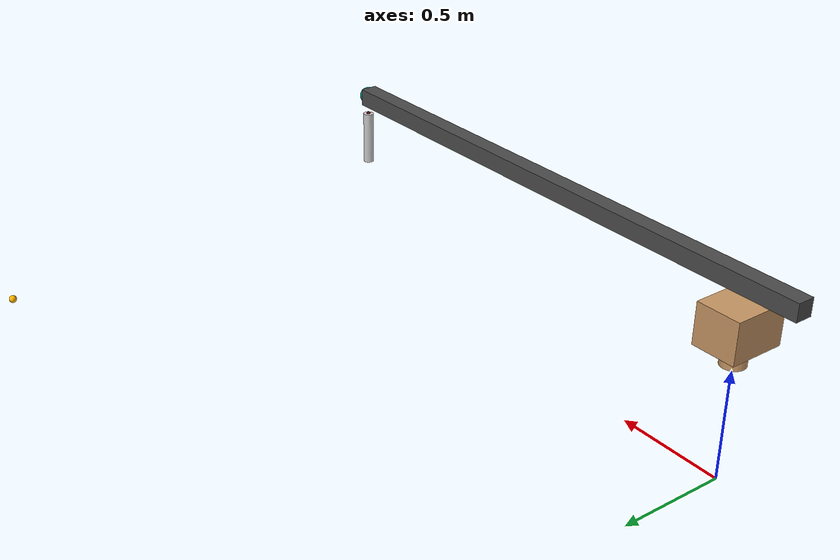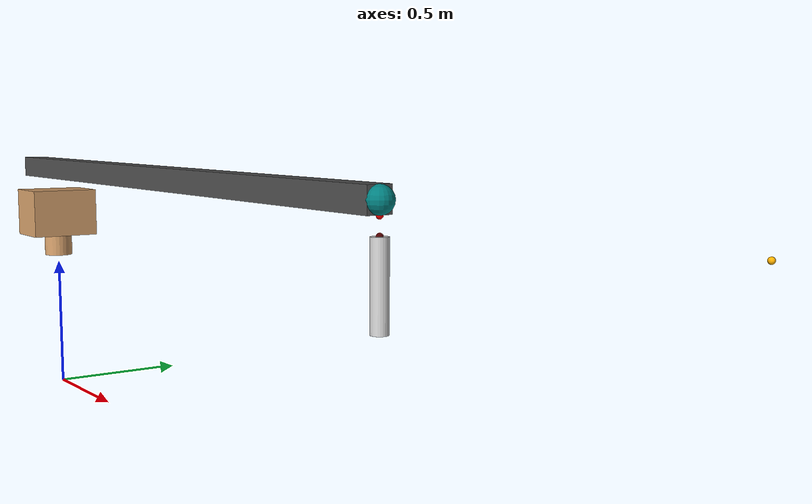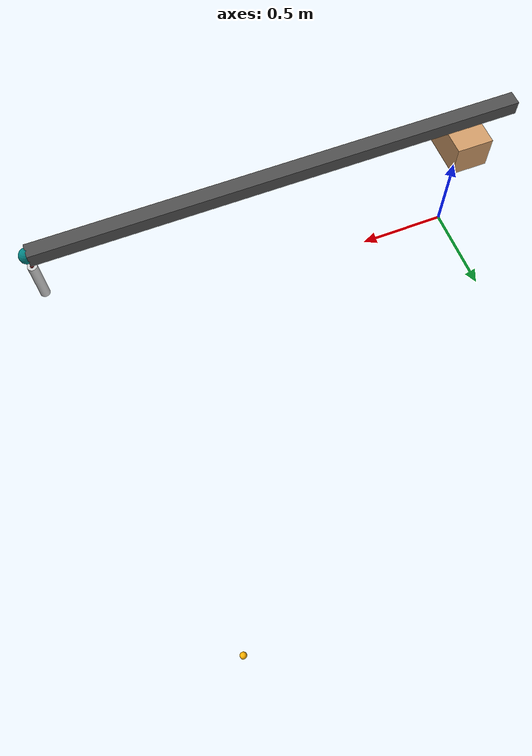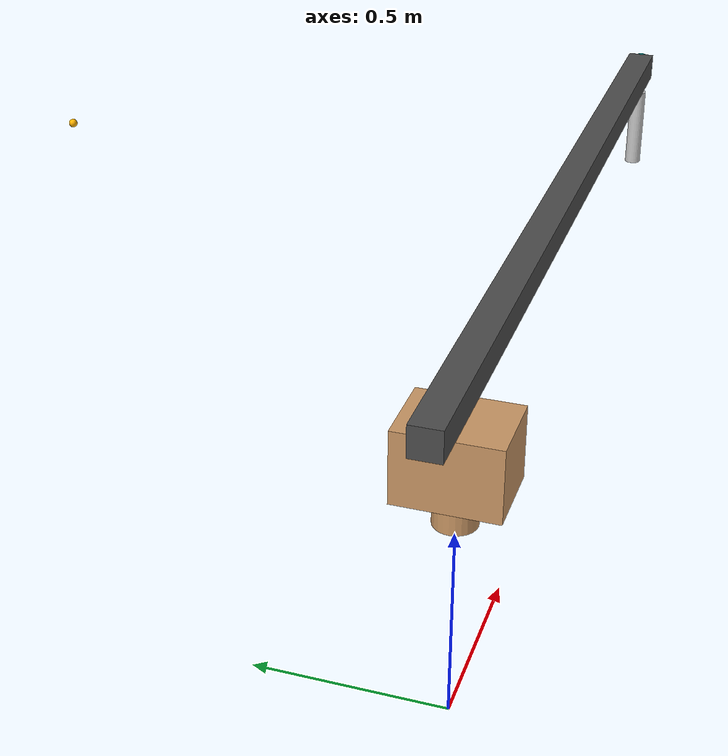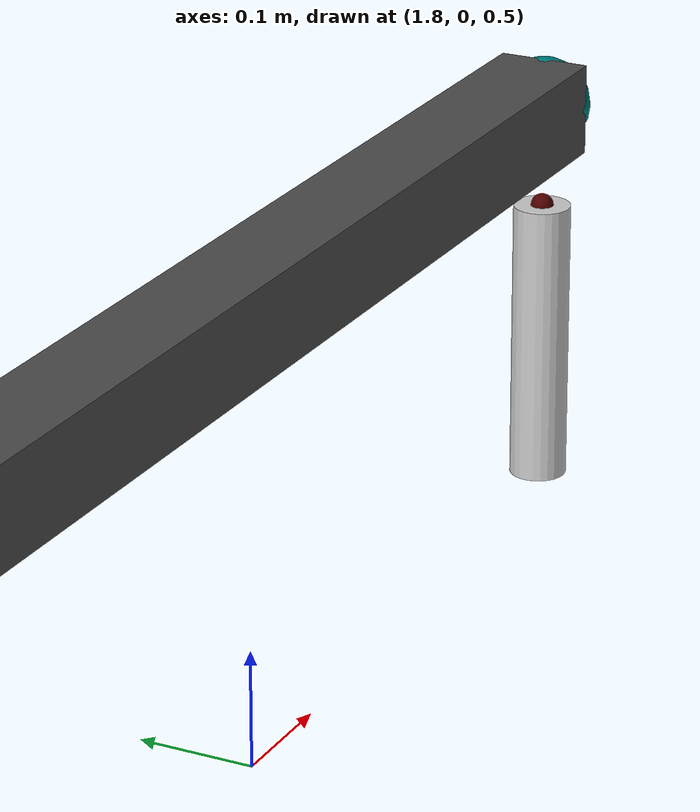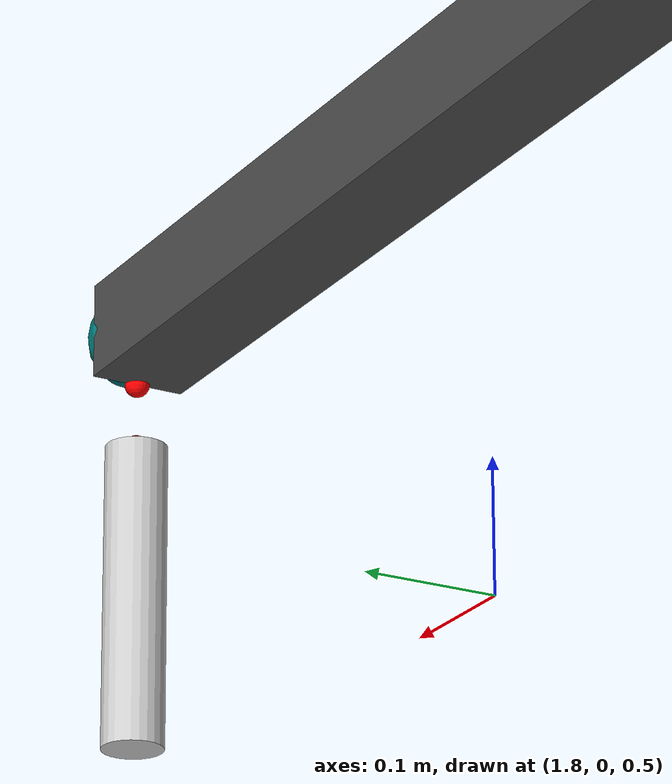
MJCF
<mujoco>
  <option integrator="implicitfast" timestep="0.01">
    <flag energy="enable" warmstart="enable" contact="disable"/>
  </option>

  <compiler autolimits="true" angle="radian"/>

  <worldbody>
    <light diffuse=".75 .75 .75" pos="0 0 10" dir="0 0 -1" castshadow="false"/>
    <!-- geom type="plane" size="5 5 0.1" rgba=".7 .7 .6 1"/ -->
     <!-- Dummy body to hold platform joints used only by actuators -->
    <body name="platform_dummy" pos="1000 1000 1000" mocap="false">
      <joint name="platform-x-slider" type="slide" axis="1 0 0"/>
      <joint name="platform-y-slider" type="slide" axis="0 1 0"/>
      <joint name="platform-z-slider" type="slide" axis="0 0 1" ref="1.5"/>
      <joint name="platform-x-hinge" type="hinge" axis="1 0 0"/>
      <joint name="platform-y-hinge" type="hinge" axis="0 1 0"/>
      <joint name="platform-z-hinge" type="hinge" axis="0 0 1"/>
    </body>

    <body name="base" pos="0 0 0.572" euler="0 0 0" gravcomp="1" >
      <site name="base_imu" pos="0 0 0" size="0.01" />

     <geom name="base_geom"  type="cylinder" size="0.054 0.042 " rgba=".8 .6 .4 1" mass="6.0"/>

      <body name="cab" pos="0 0 0.134" gravcomp="1">
        <joint name="slew-joint" type="hinge" axis="0 0 1" pos="0 0 -.092" range="-1.3 1.3" armature="0.0" damping="0.0"/>
        <geom name="cab_geom" type="box" size=".100 .128 .092" rgba=".8 .6 .4 1" mass="7.8"/>

        <site name="cab_imu" pos="0 0 0" size="0.01" />

        <body name="boom" pos="1.0347 0 .179" gravcomp="1">
          <joint name="luff-joint" type="hinge" pos="-1.0392 0 -.179" axis="0 -1 0" range="0.001 1.2" armature="7110.0" damping="0.4454"/>
          <geom name="boom_geom" type="box" size="1.3017 .039 .039" rgba=".3 .3 .3 1"  mass="1.834"/>
          <geom name="front_pulley_geom" pos="1.3017 0 0" type="sphere" size="0.04" rgba="0 .5 .5 1" mass="0.380"/>
          <site name="boom_imu" pos="0 0 0" size="0.01" />
            <!-- hoist_module -->
          <site name="b_tip" pos="1.3017 0 -.039" rgba="1 0 0 1" size="0.01" />

          <body name="boom_tip" pos="1.3017 0 -.039" gravcomp="1">
            <geom name="boom_tip_geom" pos="0 0 0" type="sphere" size="0.01" rgba=".3 .3 .3 1" mass="0.00001"/>

            <joint name="boom-tip-beta-hinge" type="hinge" axis="1 0 0" range="-1.5 1.5" damping="0.3014" armature="6.061e-11"/>
            <joint name="boom-tip-phi-hinge" type="hinge" axis="0 1 0" range="-1.5 1.5" damping="0.3014" armature="6.061e-11"/>
            <joint name="hoist-slider" type="slide" axis="0 0 -1" range="0.07 2.0" armature="144.1" damping="1.373e-15"/>

            <body name="payload_tip" pos="0 0 -.0535">
              <geom name="p_tip_geom" type="sphere" size="0.01" rgba=".3 0 0 1" mass="0.0000000001" contype="0" conaffinity="0"/>
              <site name="p_tip" pos="0 0 0" size="0.01" rgba="1 0 0 1" />

              <joint name="p-tip-eta-hinge" type="hinge" axis="1 0 0" damping="0.0001" limited="true" range="-1.5 1.5"/>
              <joint name="p-tip-sigma-hinge" type="hinge" axis="0 1 0" damping="0.0001" limited="true" range="-1.5 1.5"/>

              <body name="payload" pos="0 0 0">
                <geom name="payload_geom" pos="0 0 -0.125" type="cylinder" size="0.025 0.125" rgba=".8 .8 .8 1" mass="0.2"/>
                <site name="p_cg" pos="0 0 -0.125"/>
                                <!-- site name="payload_bottom" pos="0 0 -0.4572" size="0.01" rgba="0 1 0 1" / -->
              </body> <!-- payload -->
            </body> <!-- paylaod connector -->
          </body> <!-- boom tip -->
        </body> <!-- boom -->
      </body> <!-- cab -->

    </body> <!-- base -->

    <!-- place vicon mocap under the base of the crane, on the motion platform-->
   <body name="vicon" mocap="true" pos="2 2 0.564">
      <geom name="vicon_geom" type="sphere" size="0.015" rgba="1 0.7 0 1" condim="1"/>
      <site name="vicon_marker" pos="0 0 0"/>
    </body> <!-- vicon -->

  </worldbody>

  <actuator>
      <velocity name="slew-velocity" joint="slew-joint" ctrlrange="-.7854 .7854" kv="3000.0"/>
      <velocity name="luff-velocity" joint="luff-joint" ctrlrange="-.2618 .2618" kv="14020.0"/>
      <velocity name="hoist-velocity" joint="hoist-slider" ctrlrange="-.8 .8" kv="586.0"/>

      <position name="platform-x-position" joint="platform-x-slider" ctrlrange="-1 1" kp="1000" kv="500"/>
      <position name="platform-y-position" joint="platform-y-slider" ctrlrange="-1 1" kp="1000" kv="500"/>
      <position name="platform-z-position" joint="platform-z-slider" ctrlrange="-1 1" kp="1000" kv="500"/>
      <position name="platform-x-rot" joint="platform-x-hinge" ctrlrange="-1 1" kp="5000" kv="500"/>
      <position name="platform-y-rot" joint="platform-y-hinge" ctrlrange="-1 1" kp="5000" kv="500"/>
      <position name="platform-z-rot" joint="platform-z-hinge" ctrlrange="-1 1" kp="5000" kv="500"/>
  </actuator>

</mujoco>
